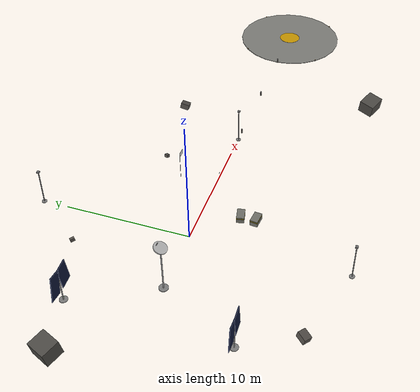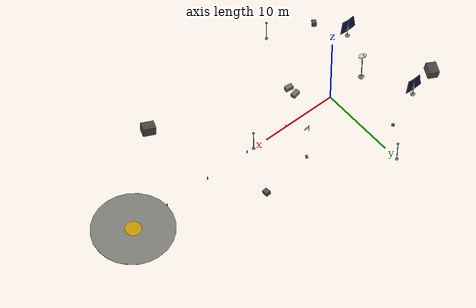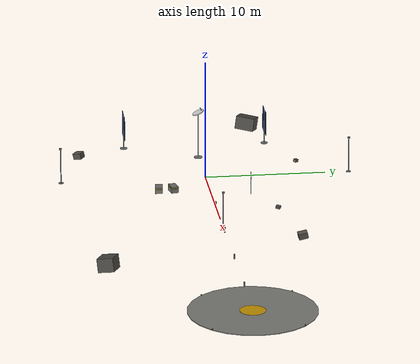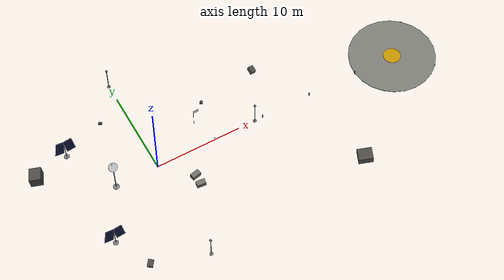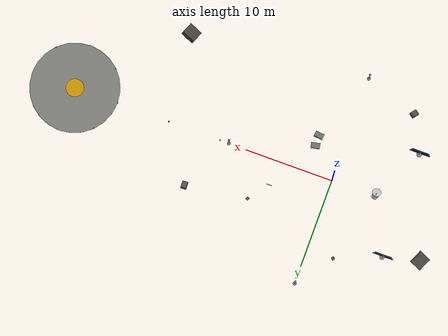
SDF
<sdf version="1.9">
 <world name="lunar_surface">
  <gravity>0 0 -1.625</gravity>
  <physics type="ode">
   <max_step_size>0.001</max_step_size>
   <real_time_factor>1.0</real_time_factor>
   <real_time_update_rate>1000</real_time_update_rate>
  </physics>
  <scene><ambient>0.05 0.05 0.05 1.0</ambient><background>0 0 0 1.0</background><shadows>true</shadows></scene>
  <light type="directional" name="sun">
   <pose>0 0 100 0 0 0</pose>
   <diffuse>1.0 1.0 0.98 1.0</diffuse>
   <specular>0.5 0.5 0.48 1.0</specular>
   <attenuation>
    <range>10000</range>
    <constant>0.9</constant>
    <linear>0.0</linear>
    <quadratic>0.0</quadratic>
   </attenuation>
   <direction>0.5 0.2 -0.3</direction>
  </light>
  <plugin filename="gz-sim-physics-system" name="gz::sim::systems::Physics">
   <engine><filename>gz-physics-dartsim-plugin</filename></engine>
  </plugin>
  <plugin filename="gz-sim-scene-broadcaster-system" name="gz::sim::systems::SceneBroadcaster"/>
  <plugin filename="gz-sim-user-commands-system" name="gz::sim::systems::UserCommands"/>
  <plugin filename="gz-sim-sensors-system" name="gz::sim::systems::Sensors">
   <render_engine>ogre2</render_engine>
  </plugin>
  <plugin filename="gz-sim-contact-system" name="gz::sim::systems::Contact"/>
  <include><uri>model://landing_pad</uri><name>landing_pad</name><pose>30 0 0 0 0 0</pose></include>
  <include><uri>model://solar_array</uri><name>solar_array_1</name><pose>-8 6 0 0 0 0</pose></include>
  <include><uri>model://solar_array</uri><name>solar_array_2</name><pose>-8 -6 0 0 0 0</pose></include>
  <include><uri>model://comm_antenna</uri><name>comm_antenna</name><pose>-5 0 0 0 0 0</pose></include>
  <include><uri>model://equipment_crate</uri><name>crate_1</name><pose>3 -3 0 0 0 0.2</pose></include>
  <include><uri>model://equipment_crate</uri><name>crate_2</name><pose>3 -4.2 0 0 0 -0.1</pose></include>
  <include><uri>model://lunar_flag</uri><name>flag</name><pose>6 3 0 0 0 0</pose></include>
  <include><uri>model://light_tower</uri><name>tower_north</name><pose>0 12 0 0 0 0</pose></include>
  <include><uri>model://light_tower</uri><name>tower_south</name><pose>0 -12 0 0 0 0</pose></include>
  <include><uri>model://light_tower</uri><name>tower_east</name><pose>12 0 0 0 0 0</pose></include>
  <include><uri>model://pathway_marker</uri><name>marker_1</name><pose>7 0 0 0 0 0</pose></include>
  <include><uri>model://pathway_marker</uri><name>marker_2</name><pose>13 0 0 0 0 0</pose></include>
  <include><uri>model://pathway_marker</uri><name>marker_3</name><pose>19 0 0 0 0 0</pose></include>
  <include><uri>model://pathway_marker</uri><name>marker_4</name><pose>25 0 0 0 0 0</pose></include>
  <include><uri>model://lunar_rock_a</uri><name>rock_1</name><pose>8 5 0 0 0 0.8</pose></include>
  <include><uri>model://lunar_rock_a</uri><name>rock_2</name><pose>-3 8 0 0 0 2.1</pose></include>
  <include><uri>model://lunar_rock_b</uri><name>rock_3</name><pose>15 6 0 0 0 1.2</pose></include>
  <include><uri>model://lunar_rock_b</uri><name>rock_4</name><pose>-6 -10 0 0 0 0.5</pose></include>
  <include><uri>model://lunar_rock_c</uri><name>rock_5</name><pose>-12 5 0 0 0 0.9</pose></include>
  <include><uri>model://lunar_rock_c</uri><name>rock_6</name><pose>20 -10 0 0 0 2.5</pose></include>
 </world>
</sdf>

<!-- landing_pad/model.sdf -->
<sdf version="1.9">
  <model name="landing_pad">
    <static>true</static>

    <link name="body">
      <!-- Main pad surface -->
      <visual name="pad_visual">
        <pose>0 0 0.025 0 0 0</pose>
        <geometry>
          <cylinder>
            <radius>5.0</radius>
            <length>0.05</length>
          </cylinder>
        </geometry>
        <material>
          <ambient>0.4 0.4 0.38 1</ambient>
          <diffuse>0.5 0.5 0.48 1</diffuse>
          <specular>0.15 0.15 0.15 1</specular>
        </material>
      </visual>

      <!-- Center marking circle -->
      <visual name="center_mark_visual">
        <pose>0 0 0.055 0 0 0</pose>
        <geometry>
          <cylinder>
            <radius>1.0</radius>
            <length>0.01</length>
          </cylinder>
        </geometry>
        <material>
          <ambient>0.7 0.5 0 1</ambient>
          <diffuse>0.8 0.6 0 1</diffuse>
        </material>
      </visual>

      <collision name="collision">
        <pose>0 0 0.025 0 0 0</pose>
        <geometry>
          <cylinder>
            <radius>5.0</radius>
            <length>0.05</length>
          </cylinder>
        </geometry>
      </collision>

      <!-- Boundary LED NE -->
      <visual name="boundary_led_ne_visual">
        <pose>3.5 3.5 0.1 0 0 0</pose>
        <geometry>
          <sphere><radius>0.05</radius></sphere>
        </geometry>
        <material>
          <ambient>0.4 0.25 0 1</ambient>
          <diffuse>0.4 0.25 0 1</diffuse>
          <emissive>0.6 0.4 0 1</emissive>
        </material>
      </visual>
      <light name="boundary_led_ne_light" type="point">
        <pose>3.5 3.5 0.15 0 0 0</pose>
        <diffuse>1 0.7 0 1</diffuse>
        <specular>0 0 0 1</specular>
        <attenuation>
          <range>5</range>
          <constant>1.0</constant>
          <linear>0.3</linear>
          <quadratic>0.1</quadratic>
        </attenuation>
      </light>

      <!-- Boundary LED NW -->
      <visual name="boundary_led_nw_visual">
        <pose>-3.5 3.5 0.1 0 0 0</pose>
        <geometry>
          <sphere><radius>0.05</radius></sphere>
        </geometry>
        <material>
          <ambient>0.4 0.25 0 1</ambient>
          <diffuse>0.4 0.25 0 1</diffuse>
          <emissive>0.6 0.4 0 1</emissive>
        </material>
      </visual>
      <light name="boundary_led_nw_light" type="point">
        <pose>-3.5 3.5 0.15 0 0 0</pose>
        <diffuse>1 0.7 0 1</diffuse>
        <specular>0 0 0 1</specular>
        <attenuation>
          <range>5</range>
          <constant>1.0</constant>
          <linear>0.3</linear>
          <quadratic>0.1</quadratic>
        </attenuation>
      </light>

      <!-- Boundary LED SE -->
      <visual name="boundary_led_se_visual">
        <pose>3.5 -3.5 0.1 0 0 0</pose>
        <geometry>
          <sphere><radius>0.05</radius></sphere>
        </geometry>
        <material>
          <ambient>0.4 0.25 0 1</ambient>
          <diffuse>0.4 0.25 0 1</diffuse>
          <emissive>0.6 0.4 0 1</emissive>
        </material>
      </visual>
      <light name="boundary_led_se_light" type="point">
        <pose>3.5 -3.5 0.15 0 0 0</pose>
        <diffuse>1 0.7 0 1</diffuse>
        <specular>0 0 0 1</specular>
        <attenuation>
          <range>5</range>
          <constant>1.0</constant>
          <linear>0.3</linear>
          <quadratic>0.1</quadratic>
        </attenuation>
      </light>

      <!-- Boundary LED SW -->
      <visual name="boundary_led_sw_visual">
        <pose>-3.5 -3.5 0.1 0 0 0</pose>
        <geometry>
          <sphere><radius>0.05</radius></sphere>
        </geometry>
        <material>
          <ambient>0.4 0.25 0 1</ambient>
          <diffuse>0.4 0.25 0 1</diffuse>
          <emissive>0.6 0.4 0 1</emissive>
        </material>
      </visual>
      <light name="boundary_led_sw_light" type="point">
        <pose>-3.5 -3.5 0.15 0 0 0</pose>
        <diffuse>1 0.7 0 1</diffuse>
        <specular>0 0 0 1</specular>
        <attenuation>
          <range>5</range>
          <constant>1.0</constant>
          <linear>0.3</linear>
          <quadratic>0.1</quadratic>
        </attenuation>
      </light>
    </link>

    <plugin name="boundary_leds" filename="libLedPlugin.so">
      <led_group_name>pad_boundary</led_group_name>

      <led name="ne">
        <visual_name>body/boundary_led_ne_visual</visual_name>
        <light_name>body/boundary_led_ne_light</light_name>
        <default_state>
          <color>0.4 0.25 0 1</color>
          <intensity>0.0</intensity>
        </default_state>
      </led>
      <led name="nw">
        <visual_name>body/boundary_led_nw_visual</visual_name>
        <light_name>body/boundary_led_nw_light</light_name>
        <default_state>
          <color>0.4 0.25 0 1</color>
          <intensity>0.0</intensity>
        </default_state>
      </led>
      <led name="se">
        <visual_name>body/boundary_led_se_visual</visual_name>
        <light_name>body/boundary_led_se_light</light_name>
        <default_state>
          <color>0.4 0.25 0 1</color>
          <intensity>0.0</intensity>
        </default_state>
      </led>
      <led name="sw">
        <visual_name>body/boundary_led_sw_visual</visual_name>
        <light_name>body/boundary_led_sw_light</light_name>
        <default_state>
          <color>0.4 0.25 0 1</color>
          <intensity>0.0</intensity>
        </default_state>
      </led>

      <startup_mode>standby</startup_mode>

      <mode name="standby">
        <step always_on="true">
          <color>1 0.7 0 1</color>
          <intensity>0.8</intensity>
        </step>
      </mode>

      <mode name="active">
        <step always_on="false">
          <color>1 1 1 1</color>
          <intensity>2.0</intensity>
          <on_time>0.25</on_time>
        </step>
        <step always_on="false">
          <color>0.3 0.3 0.3 1</color>
          <intensity>0.0</intensity>
          <on_time>0.25</on_time>
        </step>
      </mode>

      <mode name="emergency">
        <step always_on="false">
          <color>1 0 0 1</color>
          <intensity>2.0</intensity>
          <on_time>0.15</on_time>
        </step>
        <step always_on="false">
          <color>0.3 0 0 1</color>
          <intensity>0.0</intensity>
          <on_time>0.15</on_time>
        </step>
      </mode>
    </plugin>
  </model>
</sdf>

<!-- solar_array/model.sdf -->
<sdf version="1.9">
  <model name="solar_array">
    <static>true</static>

    <link name="body">
      <!-- Mast -->
      <visual name="mast_visual">
        <pose>0 0 1.0 0 0 0</pose>
        <geometry>
          <cylinder>
            <radius>0.04</radius>
            <length>2.0</length>
          </cylinder>
        </geometry>
        <material>
          <ambient>0.5 0.5 0.5 1</ambient>
          <diffuse>0.6 0.6 0.6 1</diffuse>
          <specular>0.3 0.3 0.3 1</specular>
        </material>
      </visual>

      <!-- Left panel -->
      <visual name="panel_left_visual">
        <pose>-0.55 0 2.0 0 0.15 0</pose>
        <geometry>
          <box><size>1.0 0.05 2.0</size></box>
        </geometry>
        <material>
          <ambient>0.02 0.04 0.12 1</ambient>
          <diffuse>0.05 0.08 0.2 1</diffuse>
          <specular>0.3 0.3 0.4 1</specular>
        </material>
      </visual>

      <!-- Right panel -->
      <visual name="panel_right_visual">
        <pose>0.55 0 2.0 0 -0.15 0</pose>
        <geometry>
          <box><size>1.0 0.05 2.0</size></box>
        </geometry>
        <material>
          <ambient>0.02 0.04 0.12 1</ambient>
          <diffuse>0.05 0.08 0.2 1</diffuse>
          <specular>0.3 0.3 0.4 1</specular>
        </material>
      </visual>

      <!-- Base plate -->
      <visual name="base_visual">
        <pose>0 0 0.02 0 0 0</pose>
        <geometry>
          <cylinder>
            <radius>0.3</radius>
            <length>0.04</length>
          </cylinder>
        </geometry>
        <material>
          <ambient>0.4 0.4 0.4 1</ambient>
          <diffuse>0.5 0.5 0.5 1</diffuse>
        </material>
      </visual>

      <collision name="collision_mast">
        <pose>0 0 1.0 0 0 0</pose>
        <geometry>
          <cylinder>
            <radius>0.06</radius>
            <length>2.0</length>
          </cylinder>
        </geometry>
      </collision>
      <collision name="collision_panels">
        <pose>0 0 2.0 0 0 0</pose>
        <geometry>
          <box><size>2.2 0.1 2.0</size></box>
        </geometry>
      </collision>

      <!-- Status LED -->
      <visual name="status_led_visual">
        <pose>0.08 0 0.15 0 0 0</pose>
        <geometry>
          <sphere><radius>0.025</radius></sphere>
        </geometry>
        <material>
          <ambient>0 0.2 0 1</ambient>
          <diffuse>0 0.2 0 1</diffuse>
          <emissive>0 0.3 0 1</emissive>
        </material>
      </visual>
      <light name="status_led_light" type="point">
        <pose>0.1 0 0.15 0 0 0</pose>
        <diffuse>0 1 0 1</diffuse>
        <specular>0 0 0 1</specular>
        <attenuation>
          <range>2</range>
          <constant>1.0</constant>
          <linear>0.5</linear>
          <quadratic>0.3</quadratic>
        </attenuation>
      </light>
    </link>

    <plugin name="status_led" filename="libLedPlugin.so">
      <led_group_name>solar_status</led_group_name>

      <led name="status">
        <visual_name>body/status_led_visual</visual_name>
        <light_name>body/status_led_light</light_name>
        <default_state>
          <color>0 0.2 0 1</color>
          <intensity>0.0</intensity>
        </default_state>
      </led>

      <startup_mode>charging</startup_mode>

      <mode name="charging">
        <step always_on="false">
          <color>0 1 0 1</color>
          <intensity>1.0</intensity>
          <on_time>1.0</on_time>
        </step>
        <step always_on="false">
          <color>0 0.2 0 1</color>
          <intensity>0.0</intensity>
          <on_time>1.0</on_time>
        </step>
      </mode>

      <mode name="full">
        <step always_on="true">
          <color>0 1 0 1</color>
          <intensity>1.0</intensity>
        </step>
      </mode>

      <mode name="critical">
        <step always_on="false">
          <color>1 0 0 1</color>
          <intensity>2.0</intensity>
          <on_time>0.3</on_time>
        </step>
        <step always_on="false">
          <color>0.3 0 0 1</color>
          <intensity>0.0</intensity>
          <on_time>0.3</on_time>
        </step>
      </mode>
    </plugin>
  </model>
</sdf>

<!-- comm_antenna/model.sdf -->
<sdf version="1.9">
  <model name="comm_antenna">
    <static>true</static>

    <link name="body">
      <!-- Mast -->
      <visual name="mast_visual">
        <pose>0 0 2.0 0 0 0</pose>
        <geometry>
          <cylinder>
            <radius>0.05</radius>
            <length>4.0</length>
          </cylinder>
        </geometry>
        <material>
          <ambient>0.5 0.5 0.5 1</ambient>
          <diffuse>0.6 0.6 0.6 1</diffuse>
          <specular>0.3 0.3 0.3 1</specular>
        </material>
      </visual>

      <!-- Dish (simplified as wide short cylinder tilted) -->
      <visual name="dish_visual">
        <pose>0 0 4.0 0.4 0 0</pose>
        <geometry>
          <cylinder>
            <radius>0.5</radius>
            <length>0.08</length>
          </cylinder>
        </geometry>
        <material>
          <ambient>0.7 0.7 0.7 1</ambient>
          <diffuse>0.8 0.8 0.8 1</diffuse>
          <specular>0.4 0.4 0.4 1</specular>
        </material>
      </visual>

      <!-- Feed horn (small cylinder in front of dish) -->
      <visual name="feed_visual">
        <pose>0 0.25 4.2 0.4 0 0</pose>
        <geometry>
          <cylinder>
            <radius>0.03</radius>
            <length>0.5</length>
          </cylinder>
        </geometry>
        <material>
          <ambient>0.5 0.5 0.5 1</ambient>
          <diffuse>0.6 0.6 0.6 1</diffuse>
        </material>
      </visual>

      <!-- Base plate -->
      <visual name="base_visual">
        <pose>0 0 0.03 0 0 0</pose>
        <geometry>
          <cylinder>
            <radius>0.35</radius>
            <length>0.06</length>
          </cylinder>
        </geometry>
        <material>
          <ambient>0.4 0.4 0.4 1</ambient>
          <diffuse>0.5 0.5 0.5 1</diffuse>
        </material>
      </visual>

      <collision name="collision_mast">
        <pose>0 0 2.0 0 0 0</pose>
        <geometry>
          <cylinder>
            <radius>0.08</radius>
            <length>4.0</length>
          </cylinder>
        </geometry>
      </collision>
      <collision name="collision_dish">
        <pose>0 0 4.0 0.4 0 0</pose>
        <geometry>
          <cylinder>
            <radius>0.5</radius>
            <length>0.1</length>
          </cylinder>
        </geometry>
      </collision>

      <!-- Link status LED -->
      <visual name="link_led_visual">
        <pose>0.08 0 0.5 0 0 0</pose>
        <geometry>
          <sphere><radius>0.025</radius></sphere>
        </geometry>
        <material>
          <ambient>0.1 0.1 0.1 1</ambient>
          <diffuse>0.1 0.1 0.1 1</diffuse>
          <emissive>0 0 0 1</emissive>
        </material>
      </visual>
      <light name="link_led_light" type="point">
        <pose>0.1 0 0.5 0 0 0</pose>
        <diffuse>0 0 0 1</diffuse>
        <specular>0 0 0 1</specular>
        <attenuation>
          <range>2</range>
          <constant>1.0</constant>
          <linear>0.5</linear>
          <quadratic>0.3</quadratic>
        </attenuation>
      </light>
    </link>

    <plugin name="link_led" filename="libLedPlugin.so">
      <led_group_name>antenna_link</led_group_name>

      <led name="link">
        <visual_name>body/link_led_visual</visual_name>
        <light_name>body/link_led_light</light_name>
        <default_state>
          <color>0.1 0.1 0.1 1</color>
          <intensity>0.0</intensity>
        </default_state>
      </led>

      <mode name="transmitting">
        <step always_on="false">
          <color>0 0.5 1 1</color>
          <intensity>1.5</intensity>
          <on_time>0.3</on_time>
        </step>
        <step always_on="false">
          <color>0 0.1 0.3 1</color>
          <intensity>0.0</intensity>
          <on_time>0.3</on_time>
        </step>
      </mode>

      <mode name="connected">
        <step always_on="true">
          <color>0 1 0 1</color>
          <intensity>1.0</intensity>
        </step>
      </mode>
    </plugin>
  </model>
</sdf>

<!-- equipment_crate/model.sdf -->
<sdf version="1.9">
  <model name="equipment_crate">
    <static>true</static>
    <link name="body">
      <!-- Main crate body -->
      <visual name="crate_visual">
        <pose>0 0 0.25 0 0 0</pose>
        <geometry>
          <box><size>1.0 0.6 0.5</size></box>
        </geometry>
        <material>
          <ambient>0.45 0.45 0.42 1</ambient>
          <diffuse>0.45 0.45 0.42 1</diffuse>
          <specular>0.2 0.2 0.2 1</specular>
        </material>
      </visual>
      <!-- Yellow hazard stripe -->
      <visual name="stripe_visual">
        <pose>0 0 0.38 0 0 0</pose>
        <geometry>
          <box><size>1.01 0.61 0.06</size></box>
        </geometry>
        <material>
          <ambient>0.7 0.6 0.0 1</ambient>
          <diffuse>0.7 0.6 0.0 1</diffuse>
        </material>
      </visual>
      <collision name="collision">
        <pose>0 0 0.25 0 0 0</pose>
        <geometry>
          <box><size>1.0 0.6 0.5</size></box>
        </geometry>
      </collision>
    </link>
  </model>
</sdf>

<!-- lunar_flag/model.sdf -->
<sdf version="1.9">
  <model name="lunar_flag">
    <static>true</static>
    <link name="body">
      <!-- Pole -->
      <visual name="pole_visual">
        <pose>0 0 1.25 0 0 0</pose>
        <geometry>
          <cylinder>
            <radius>0.015</radius>
            <length>2.5</length>
          </cylinder>
        </geometry>
        <material>
          <ambient>0.7 0.7 0.7 1</ambient>
          <diffuse>0.7 0.7 0.7 1</diffuse>
          <specular>0.5 0.5 0.5 1</specular>
        </material>
      </visual>
      <!-- Flag (simplified as thin box) -->
      <visual name="flag_visual">
        <pose>0.32 0 2.2 0 0 0</pose>
        <geometry>
          <box><size>0.6 0.005 0.4</size></box>
        </geometry>
        <material>
          <ambient>0.8 0.8 0.8 1</ambient>
          <diffuse>0.8 0.8 0.8 1</diffuse>
        </material>
      </visual>
      <!-- Horizontal support rod -->
      <visual name="rod_visual">
        <pose>0.32 0 2.4 0 1.5708 0</pose>
        <geometry>
          <cylinder>
            <radius>0.008</radius>
            <length>0.6</length>
          </cylinder>
        </geometry>
        <material>
          <ambient>0.7 0.7 0.7 1</ambient>
          <diffuse>0.7 0.7 0.7 1</diffuse>
          <specular>0.5 0.5 0.5 1</specular>
        </material>
      </visual>
      <collision name="collision">
        <pose>0 0 1.25 0 0 0</pose>
        <geometry>
          <cylinder>
            <radius>0.02</radius>
            <length>2.5</length>
          </cylinder>
        </geometry>
      </collision>
    </link>
  </model>
</sdf>

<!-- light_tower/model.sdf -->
<sdf version="1.9">
  <model name="light_tower">
    <static>true</static>

    <link name="body">
      <!-- Tower mast -->
      <visual name="mast_visual">
        <pose>0 0 1.5 0 0 0</pose>
        <geometry>
          <cylinder>
            <radius>0.04</radius>
            <length>3.0</length>
          </cylinder>
        </geometry>
        <material>
          <ambient>0.45 0.45 0.45 1</ambient>
          <diffuse>0.55 0.55 0.55 1</diffuse>
          <specular>0.3 0.3 0.3 1</specular>
        </material>
      </visual>

      <!-- Light housing -->
      <visual name="housing_visual">
        <pose>0 0 3.0 0 0 0</pose>
        <geometry>
          <box><size>0.2 0.2 0.12</size></box>
        </geometry>
        <material>
          <ambient>0.35 0.35 0.35 1</ambient>
          <diffuse>0.45 0.45 0.45 1</diffuse>
        </material>
      </visual>

      <!-- Base plate -->
      <visual name="base_visual">
        <pose>0 0 0.02 0 0 0</pose>
        <geometry>
          <cylinder>
            <radius>0.2</radius>
            <length>0.04</length>
          </cylinder>
        </geometry>
        <material>
          <ambient>0.4 0.4 0.4 1</ambient>
          <diffuse>0.5 0.5 0.5 1</diffuse>
        </material>
      </visual>

      <collision name="collision">
        <pose>0 0 1.5 0 0 0</pose>
        <geometry>
          <cylinder>
            <radius>0.06</radius>
            <length>3.0</length>
          </cylinder>
        </geometry>
      </collision>

      <!-- Tower LED -->
      <visual name="tower_led_visual">
        <pose>0 0 2.95 0 0 0</pose>
        <geometry>
          <sphere><radius>0.06</radius></sphere>
        </geometry>
        <material>
          <ambient>0.2 0.2 0.2 1</ambient>
          <diffuse>0.2 0.2 0.2 1</diffuse>
          <emissive>0 0 0 1</emissive>
        </material>
      </visual>
      <light name="tower_led_light" type="point">
        <pose>0 0 3.05 0 0 0</pose>
        <diffuse>1 1 1 1</diffuse>
        <specular>0 0 0 1</specular>
        <attenuation>
          <range>15</range>
          <constant>1.0</constant>
          <linear>0.05</linear>
          <quadratic>0.02</quadratic>
        </attenuation>
      </light>
    </link>

    <plugin name="tower_led" filename="libLedPlugin.so">
      <led_group_name>tower_light</led_group_name>

      <led name="main">
        <visual_name>body/tower_led_visual</visual_name>
        <light_name>body/tower_led_light</light_name>
        <default_state>
          <color>0.2 0.2 0.2 1</color>
          <intensity>0.0</intensity>
        </default_state>
      </led>

      <mode name="on">
        <step always_on="true">
          <color>1 1 0.95 1</color>
          <intensity>3.0</intensity>
        </step>
      </mode>

      <mode name="emergency">
        <step always_on="false">
          <color>1 0 0 1</color>
          <intensity>3.0</intensity>
          <on_time>0.5</on_time>
        </step>
        <step always_on="false">
          <color>0.2 0 0 1</color>
          <intensity>0.0</intensity>
          <on_time>0.5</on_time>
        </step>
      </mode>
    </plugin>
  </model>
</sdf>

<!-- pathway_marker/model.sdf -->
<sdf version="1.9">
  <model name="pathway_marker">
    <static>true</static>

    <link name="body">
      <!-- Bollard body -->
      <visual name="bollard_visual">
        <pose>0 0 0.2 0 0 0</pose>
        <geometry>
          <cylinder>
            <radius>0.06</radius>
            <length>0.4</length>
          </cylinder>
        </geometry>
        <material>
          <ambient>0.35 0.33 0.31 1</ambient>
          <diffuse>0.4 0.38 0.36 1</diffuse>
          <specular>0.15 0.15 0.15 1</specular>
        </material>
      </visual>

      <!-- Reflective band -->
      <visual name="band_visual">
        <pose>0 0 0.35 0 0 0</pose>
        <geometry>
          <cylinder>
            <radius>0.065</radius>
            <length>0.04</length>
          </cylinder>
        </geometry>
        <material>
          <ambient>0.6 0.6 0.6 1</ambient>
          <diffuse>0.7 0.7 0.7 1</diffuse>
          <specular>0.5 0.5 0.5 1</specular>
        </material>
      </visual>

      <collision name="collision">
        <pose>0 0 0.2 0 0 0</pose>
        <geometry>
          <cylinder>
            <radius>0.07</radius>
            <length>0.4</length>
          </cylinder>
        </geometry>
      </collision>

      <!-- Guide LED (top) -->
      <visual name="guide_led_visual">
        <pose>0 0 0.42 0 0 0</pose>
        <geometry>
          <sphere><radius>0.03</radius></sphere>
        </geometry>
        <material>
          <ambient>0.15 0.15 0.15 1</ambient>
          <diffuse>0.15 0.15 0.15 1</diffuse>
          <emissive>0.2 0.2 0.2 1</emissive>
        </material>
      </visual>
      <light name="guide_led_light" type="point">
        <pose>0 0 0.45 0 0 0</pose>
        <diffuse>1 1 1 1</diffuse>
        <specular>0 0 0 1</specular>
        <attenuation>
          <range>3</range>
          <constant>1.0</constant>
          <linear>0.4</linear>
          <quadratic>0.2</quadratic>
        </attenuation>
      </light>
    </link>

    <plugin name="guide_led" filename="libLedPlugin.so">
      <led_group_name>marker_light</led_group_name>

      <led name="guide">
        <visual_name>body/guide_led_visual</visual_name>
        <light_name>body/guide_led_light</light_name>
        <default_state>
          <color>0.15 0.15 0.15 1</color>
          <intensity>0.0</intensity>
        </default_state>
      </led>

      <startup_mode>guide</startup_mode>

      <mode name="guide">
        <step always_on="true">
          <color>0.6 0.6 0.55 1</color>
          <intensity>0.5</intensity>
        </step>
      </mode>

      <mode name="active">
        <step always_on="true">
          <color>1 1 0.95 1</color>
          <intensity>1.5</intensity>
        </step>
      </mode>

      <mode name="emergency">
        <step always_on="false">
          <color>1 0 0 1</color>
          <intensity>2.0</intensity>
          <on_time>0.3</on_time>
        </step>
        <step always_on="false">
          <color>0.2 0 0 1</color>
          <intensity>0.0</intensity>
          <on_time>0.3</on_time>
        </step>
      </mode>
    </plugin>
  </model>
</sdf>

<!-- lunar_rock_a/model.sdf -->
<sdf version="1.9">
  <model name="lunar_rock_a">
    <static>true</static>
    <link name="body">
      <visual name="visual">
        <pose>0 0 0.1 0.2 0.15 0.3</pose>
        <geometry>
          <box><size>0.35 0.28 0.22</size></box>
        </geometry>
        <material>
          <ambient>0.30 0.28 0.26 1</ambient>
          <diffuse>0.35 0.33 0.31 1</diffuse>
          <specular>0.05 0.05 0.05 1</specular>
        </material>
      </visual>
      <collision name="collision">
        <pose>0 0 0.1 0 0 0</pose>
        <geometry>
          <box><size>0.35 0.28 0.22</size></box>
        </geometry>
      </collision>
    </link>
  </model>
</sdf>

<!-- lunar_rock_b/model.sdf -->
<sdf version="1.9">
  <model name="lunar_rock_b">
    <static>true</static>
    <link name="body">
      <visual name="visual">
        <pose>0 0 0.25 0.1 -0.2 0.4</pose>
        <geometry>
          <box><size>0.75 0.6 0.5</size></box>
        </geometry>
        <material>
          <ambient>0.28 0.26 0.24 1</ambient>
          <diffuse>0.33 0.31 0.29 1</diffuse>
          <specular>0.05 0.05 0.05 1</specular>
        </material>
      </visual>
      <collision name="collision">
        <pose>0 0 0.25 0 0 0</pose>
        <geometry>
          <box><size>0.75 0.6 0.5</size></box>
        </geometry>
      </collision>
    </link>
  </model>
</sdf>

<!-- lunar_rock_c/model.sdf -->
<sdf version="1.9">
  <model name="lunar_rock_c">
    <static>true</static>
    <link name="body">
      <visual name="visual">
        <pose>0 0 0.5 -0.15 0.1 0.25</pose>
        <geometry>
          <box><size>1.6 1.3 1.1</size></box>
        </geometry>
        <material>
          <ambient>0.25 0.24 0.22 1</ambient>
          <diffuse>0.30 0.29 0.27 1</diffuse>
          <specular>0.04 0.04 0.04 1</specular>
        </material>
      </visual>
      <collision name="collision">
        <pose>0 0 0.5 0 0 0</pose>
        <geometry>
          <box><size>1.6 1.3 1.1</size></box>
        </geometry>
      </collision>
    </link>
  </model>
</sdf>
